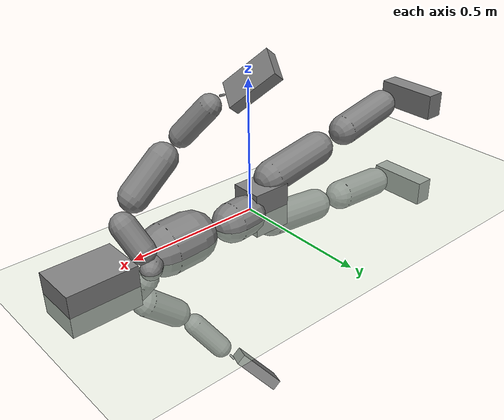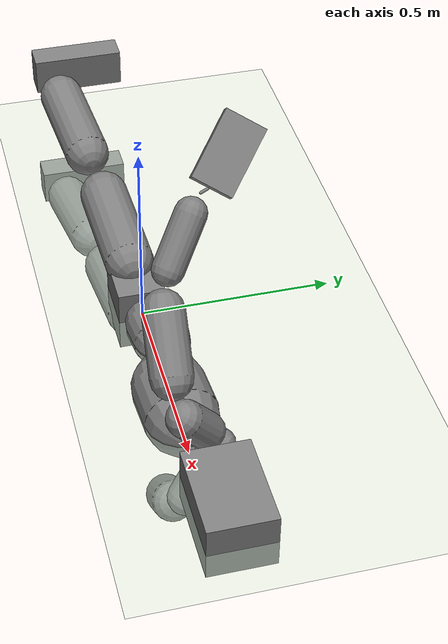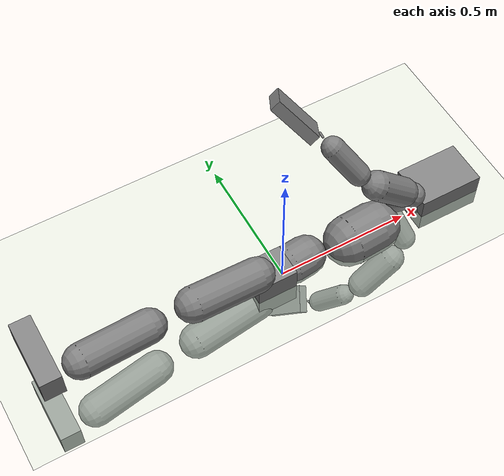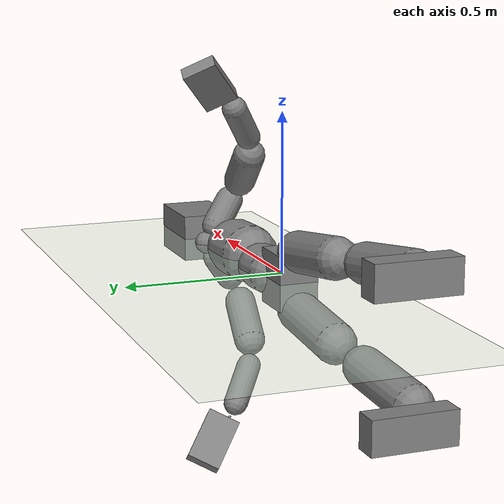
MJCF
<mujoco model="humanoid">
  <compiler coordinate="local"/>
  <statistic extent="2" center="0 0 1"/>
  <option timestep="0.00555"/>
  <default>
    <motor ctrlrange="-1 1" ctrllimited="true"/>
    <geom type="capsule" condim="1" friction="1.0 0.05 0.05" solimp=".9 .99 .003" solref=".015 1"/>
    <joint type="hinge" damping="0.1" stiffness="5" armature=".007" limited="true" solimplimit="0 .99 .01"/>
    <site size=".04" group="3"/>
    <default class="force-torque">
      <site type="box" size=".01 .01 .02" rgba="1 0 0 1"/>
    </default>
    <default class="touch">
      <site type="capsule" rgba="0 0 1 .3"/>
    </default>
  </default>
  <asset>
    <texture type="skybox" builtin="gradient" rgb1=".4 .5 .6" rgb2="0 0 0" width="100" height="100"/>
    <texture builtin="flat" height="1278" mark="cross" markrgb="1 1 1" name="texgeom" random="0.01" rgb1="0.8 0.6 0.4" rgb2="0.8 0.6 0.4" type="cube" width="127"/>
    <texture builtin="checker" height="100" name="texplane" rgb1="0 0 0" rgb2="0.8 0.8 0.8" type="2d" width="100"/>
    <material name="MatPlane" reflectance="0.5" shininess="1" specular="1" texrepeat="60 60" texture="texplane"/>
    <material name="geom" texture="texgeom" texuniform="true"/>
  </asset>
  <worldbody>
    <light cutoff="100" diffuse="1 1 1" dir="-0 0 -1.3" directional="true" exponent="1" pos="0 0 1.3" specular=".1 .1 .1"/>
    <geom conaffinity="1" condim="3" name="floor" pos="0 0 0" rgba="0.8 0.9 0.8 1" size="100 100 .2" type="plane" material="MatPlane"/>
    <body name="b_root" pos="0 0 0">
      <freejoint name="b_root"/>
      <geom density="4016.851368" type="box" pos="-0.0556 -0.0038 -0.0013" size="0.0746 0.0613 0.0858" quat="1.0000 0.0000 0.0000 0.0000"/>
      <body name="b_spine0" pos="0.0202 -0.0325 0">
        <joint name="b_spine0_x" type="hinge" pos="0 0 0" axis="1 0 0" stiffness="1000" damping="100" armature="0.02" range="-180.0000 180.0000"/>
        <joint name="b_spine0_y" type="hinge" pos="0 0 0" axis="0 1 0" stiffness="1000" damping="100" armature="0.02" range="-180.0000 180.0000"/>
        <joint name="b_spine0_z" type="hinge" pos="0 0 0" axis="0 0 1" stiffness="1000" damping="100" armature="0.02" range="-180.0000 180.0000"/>
        <geom type="capsule" contype="1" conaffinity="0" density="1777.777778" fromto="0.0221 0.0522 0.0000 0.0883 0.0588 0.0000" size="0.074"/>
        <body name="b_spine1" pos="0.1104 0.011 0">
          <joint name="b_spine1_x" type="hinge" pos="0 0 0" axis="1 0 0" stiffness="1000" damping="100" armature="0.02" range="-180.0000 180.0000"/>
          <joint name="b_spine1_y" type="hinge" pos="0 0 0" axis="0 1 0" stiffness="1000" damping="100" armature="0.02" range="-180.0000 180.0000"/>
          <joint name="b_spine1_z" type="hinge" pos="0 0 0" axis="0 0 1" stiffness="1000" damping="100" armature="0.02" range="-180.0000 180.0000"/>
          <geom type="capsule" contype="1" conaffinity="0" density="1777.777778" fromto="0.0219 0.0448 0.0000 0.0875 0.0292 0.0000" size="0.0035"/>
          <body name="b_spine2" pos="0.1094 -0.026 0">
            <joint name="b_spine2_x" type="hinge" pos="0 0 0" axis="1 0 0" stiffness="1000" damping="100" armature="0.02" range="-180.0000 180.0000"/>
            <joint name="b_spine2_y" type="hinge" pos="0 0 0" axis="0 1 0" stiffness="1000" damping="100" armature="0.02" range="-180.0000 180.0000"/>
            <joint name="b_spine2_z" type="hinge" pos="0 0 0" axis="0 0 1" stiffness="1000" damping="100" armature="0.02" range="-180.0000 180.0000"/>
            <geom type="capsule" contype="1" conaffinity="0" density="1777.777778" fromto="0.0369 0.0521 0.0000 0.1475 0.0583 0.0000" size="0.0942"/>
            <body name="b_spine3" pos="0.1843 0.0103 0">
              <joint name="b_spine3_x" type="hinge" pos="0 0 0" axis="1 0 0" stiffness="1000" damping="100" armature="0.02" range="-180.0000 180.0000"/>
              <joint name="b_spine3_y" type="hinge" pos="0 0 0" axis="0 1 0" stiffness="1000" damping="100" armature="0.02" range="-180.0000 180.0000"/>
              <joint name="b_spine3_z" type="hinge" pos="0 0 0" axis="0 0 1" stiffness="1000" damping="100" armature="0.02" range="-180.0000 180.0000"/>
              <geom type="capsule" contype="1" conaffinity="0" density="1777.777778" fromto="0.0157 0.0669 0.0000 0.0628 0.1176 0.0000" size="0.0369"/>
              <body name="b_neck0" pos="0.121 0.0522 0">
                <joint name="b_neck0_x" type="hinge" pos="0 0 0" axis="1 0 0" stiffness="500" damping="50" armature="0.02" range="-180.0000 180.0000"/>
                <joint name="b_neck0_y" type="hinge" pos="0 0 0" axis="0 1 0" stiffness="500" damping="50" armature="0.02" range="-180.0000 180.0000"/>
                <joint name="b_neck0_z" type="hinge" pos="0 0 0" axis="0 0 1" stiffness="500" damping="50" armature="0.02" range="-180.0000 180.0000"/>
                <geom type="capsule" contype="1" conaffinity="0" density="1000" fromto="0.0135 0.0041 0.0000 0.0542 0.0163 0.0000" size="0.03"/>
                <body name="b_head" pos="0.0677 0.0204 0">
                  <joint name="b_head_x" type="hinge" pos="0 0 0" axis="1 0 0" stiffness="500" damping="50" armature="0.02" range="-180.0000 180.0000"/>
                  <joint name="b_head_y" type="hinge" pos="0 0 0" axis="0 1 0" stiffness="500" damping="50" armature="0.02" range="-180.0000 180.0000"/>
                  <joint name="b_head_z" type="hinge" pos="0 0 0" axis="0 0 1" stiffness="500" damping="50" armature="0.02" range="-180.0000 180.0000"/>
                  <geom density="734.7532" type="box" pos="0.0689 0.0121 0.0000" size="0.122 0.0843 0.0755" quat="1.0000 0.0000 0.0000 0.0000"/>
                </body>
              </body>
              <body name="b_l_shoulder" pos="0.0572 0.1007 0.0282">
                <joint name="b_l_shoulder_x" type="hinge" pos="0 0 0" axis="1 0 0" stiffness="500" damping="50" armature="0.02" range="-180.0000 180.0000"/>
                <joint name="b_l_shoulder_y" type="hinge" pos="0 0 0" axis="0 1 0" stiffness="500" damping="50" armature="0.02" range="-180.0000 180.0000"/>
                <joint name="b_l_shoulder_z" type="hinge" pos="0 0 0" axis="0 0 1" stiffness="500" damping="50" armature="0.02" range="-180.0000 180.0000"/>
                <geom type="capsule" contype="1" conaffinity="0" density="1777.777778" fromto="0.0086 -0.0191 0.0265 0.0346 -0.0765 0.1058" size="0.0459"/>
                <body name="p_l_scap" pos="0.0432 -0.0956 0.1323">
                  <joint name="p_l_scap_x" type="hinge" pos="0 0 0" axis="1 0 0" stiffness="500" damping="50" armature="0.02" range="-180.0000 180.0000"/>
                  <joint name="p_l_scap_y" type="hinge" pos="0 0 0" axis="0 1 0" stiffness="500" damping="50" armature="0.02" range="-180.0000 180.0000"/>
                  <joint name="p_l_scap_z" type="hinge" pos="0 0 0" axis="0 0 1" stiffness="500" damping="50" armature="0.02" range="-180.0000 180.0000"/>
                  <geom type="sphere" contype="1" conaffinity="0" density="1000" size="0.0062" pos="0.0000 0.0000 0.0000"/>
                  <body name="b_l_arm" pos="-0.0293 -0.0001 0.0154">
                    <joint name="b_l_arm_x" type="hinge" pos="0 0 0" axis="1 0 0" stiffness="500" damping="50" armature="0.02" range="-180.0000 180.0000"/>
                    <joint name="b_l_arm_y" type="hinge" pos="0 0 0" axis="0 1 0" stiffness="500" damping="50" armature="0.02" range="-180.0000 180.0000"/>
                    <joint name="b_l_arm_z" type="hinge" pos="0 0 0" axis="0 0 1" stiffness="500" damping="50" armature="0.02" range="-180.0000 180.0000"/>
                    <geom type="capsule" contype="1" conaffinity="0" density="1000" fromto="-0.0380 0.0027 0.0344 -0.1521 0.0109 0.1376" size="0.0522"/>
                    <body name="b_l_forearm" pos="-0.1902 0.0136 0.172">
                      <joint name="b_l_forearm_x" type="hinge" pos="0 0 0" axis="1 0 0" stiffness="300" damping="30" armature="0.02" range="-180.0000 180.0000"/>
                      <joint name="b_l_forearm_y" type="hinge" pos="0 0 0" axis="0 1 0" stiffness="300" damping="30" armature="0.02" range="-180.0000 180.0000"/>
                      <joint name="b_l_forearm_z" type="hinge" pos="0 0 0" axis="0 0 1" stiffness="300" damping="30" armature="0.02" range="-180.0000 180.0000"/>
                      <geom type="capsule" contype="1" conaffinity="0" density="1000" fromto="-0.0213 0.0231 0.0342 -0.0853 0.0925 0.1367" size="0.0394"/>
                      <body name="b_l_wrist_twist" pos="-0.1067 0.1157 0.1708">
                        <joint name="b_l_wrist_twist_x" type="hinge" pos="0 0 0" axis="1 0 0" stiffness="200" damping="20" armature="0.02" range="-180.0000 180.0000"/>
                        <joint name="b_l_wrist_twist_y" type="hinge" pos="0 0 0" axis="0 1 0" stiffness="200" damping="20" armature="0.02" range="-180.0000 180.0000"/>
                        <joint name="b_l_wrist_twist_z" type="hinge" pos="0 0 0" axis="0 0 1" stiffness="200" damping="20" armature="0.02" range="-180.0000 180.0000"/>
                        <geom type="capsule" contype="1" conaffinity="0" density="1000" fromto="-0.0007 0.0054 0.0023 -0.0027 0.0216 0.0091" size="0.0037"/>
                        <body name="b_l_wrist" pos="-0.0033 0.027 0.0114">
                          <joint name="b_l_wrist_x" type="hinge" pos="0 0 0" axis="1 0 0" stiffness="200" damping="20" armature="0.02" range="-180.0000 180.0000"/>
                          <joint name="b_l_wrist_y" type="hinge" pos="0 0 0" axis="0 1 0" stiffness="200" damping="20" armature="0.02" range="-180.0000 180.0000"/>
                          <joint name="b_l_wrist_z" type="hinge" pos="0 0 0" axis="0 0 1" stiffness="200" damping="20" armature="0.02" range="-180.0000 180.0000"/>
                          <geom density="880.987223" type="box" pos="-0.0579 0.0582 0.0439" size="0.0885 0.0203 0.053" quat="0.4968 0.0840 -0.5319 0.6806"/>
                        </body>
                      </body>
                    </body>
                  </body>
                </body>
              </body>
              <body name="b_r_shoulder" pos="0.0572 0.1007 -0.0282">
                <joint name="b_r_shoulder_x" type="hinge" pos="0 0 0" axis="1 0 0" stiffness="500" damping="50" armature="0.02" range="-180.0000 180.0000"/>
                <joint name="b_r_shoulder_y" type="hinge" pos="0 0 0" axis="0 1 0" stiffness="500" damping="50" armature="0.02" range="-180.0000 180.0000"/>
                <joint name="b_r_shoulder_z" type="hinge" pos="0 0 0" axis="0 0 1" stiffness="500" damping="50" armature="0.02" range="-180.0000 180.0000"/>
                <geom type="capsule" contype="1" conaffinity="0" density="1777.777778" fromto="0.0086 -0.0191 -0.0265 0.0346 -0.0765 -0.1058" size="0.0442"/>
                <body name="p_r_scap" pos="0.0432 -0.0956 -0.1323">
                  <joint name="p_r_scap_x" type="hinge" pos="0 0 0" axis="1 0 0" stiffness="500" damping="50" armature="0.02" range="-180.0000 180.0000"/>
                  <joint name="p_r_scap_y" type="hinge" pos="0 0 0" axis="0 1 0" stiffness="500" damping="50" armature="0.02" range="-180.0000 180.0000"/>
                  <joint name="p_r_scap_z" type="hinge" pos="0 0 0" axis="0 0 1" stiffness="500" damping="50" armature="0.02" range="-180.0000 180.0000"/>
                  <geom type="sphere" contype="1" conaffinity="0" density="1000" size="0.0062" pos="0.0000 0.0000 0.0000"/>
                  <body name="b_r_arm" pos="-0.0293 -0.0001 -0.0154">
                    <joint name="b_r_arm_x" type="hinge" pos="0 0 0" axis="1 0 0" stiffness="500" damping="50" armature="0.02" range="-180.0000 180.0000"/>
                    <joint name="b_r_arm_y" type="hinge" pos="0 0 0" axis="0 1 0" stiffness="500" damping="50" armature="0.02" range="-180.0000 180.0000"/>
                    <joint name="b_r_arm_z" type="hinge" pos="0 0 0" axis="0 0 1" stiffness="500" damping="50" armature="0.02" range="-180.0000 180.0000"/>
                    <geom type="capsule" contype="1" conaffinity="0" density="1000" fromto="-0.0380 0.0027 -0.0344 -0.1521 0.0109 -0.1376" size="0.0512"/>
                    <body name="b_r_forearm" pos="-0.1902 0.0136 -0.172">
                      <joint name="b_r_forearm_x" type="hinge" pos="0 0 0" axis="1 0 0" stiffness="300" damping="30" armature="0.02" range="-180.0000 180.0000"/>
                      <joint name="b_r_forearm_y" type="hinge" pos="0 0 0" axis="0 1 0" stiffness="300" damping="30" armature="0.02" range="-180.0000 180.0000"/>
                      <joint name="b_r_forearm_z" type="hinge" pos="0 0 0" axis="0 0 1" stiffness="300" damping="30" armature="0.02" range="-180.0000 180.0000"/>
                      <geom type="capsule" contype="1" conaffinity="0" density="1000" fromto="-0.0213 0.0231 -0.0342 -0.0853 0.0925 -0.1367" size="0.0394"/>
                      <body name="b_r_wrist_twist" pos="-0.1067 0.1157 -0.1708">
                        <joint name="b_r_wrist_twist_x" type="hinge" pos="0 0 0" axis="1 0 0" stiffness="200" damping="20" armature="0.02" range="-180.0000 180.0000"/>
                        <joint name="b_r_wrist_twist_y" type="hinge" pos="0 0 0" axis="0 1 0" stiffness="200" damping="20" armature="0.02" range="-180.0000 180.0000"/>
                        <joint name="b_r_wrist_twist_z" type="hinge" pos="0 0 0" axis="0 0 1" stiffness="200" damping="20" armature="0.02" range="-180.0000 180.0000"/>
                        <geom type="capsule" contype="1" conaffinity="0" density="1000" fromto="-0.0007 0.0054 -0.0023 -0.0027 0.0216 -0.0091" size="0.0037"/>
                        <body name="b_r_wrist" pos="-0.0034 0.027 -0.0114">
                          <joint name="b_r_wrist_x" type="hinge" pos="0 0 0" axis="1 0 0" stiffness="200" damping="20" armature="0.02" range="-180.0000 180.0000"/>
                          <joint name="b_r_wrist_y" type="hinge" pos="0 0 0" axis="0 1 0" stiffness="200" damping="20" armature="0.02" range="-180.0000 180.0000"/>
                          <joint name="b_r_wrist_z" type="hinge" pos="0 0 0" axis="0 0 1" stiffness="200" damping="20" armature="0.02" range="-180.0000 180.0000"/>
                          <geom density="875.90525" type="box" pos="-0.0581 0.0575 -0.0415" size="0.0881 0.0202 0.0535" quat="0.6806 -0.5319 -0.0840 -0.4968"/>
                        </body>
                      </body>
                    </body>
                  </body>
                </body>
              </body>
            </body>
          </body>
        </body>
      </body>
      <body name="b_l_upleg" pos="-0.0255 -0.0053 0.0799">
        <joint name="b_l_upleg_x" type="hinge" pos="0 0 0" axis="1 0 0" stiffness="800" damping="80" armature="0.02" range="-180.0000 180.0000"/>
        <joint name="b_l_upleg_y" type="hinge" pos="0 0 0" axis="0 1 0" stiffness="800" damping="80" armature="0.02" range="-180.0000 180.0000"/>
        <joint name="b_l_upleg_z" type="hinge" pos="0 0 0" axis="0 0 1" stiffness="800" damping="80" armature="0.02" range="-180.0000 180.0000"/>
        <geom type="capsule" contype="1" conaffinity="0" density="1234.567901" fromto="-0.0830 -0.0048 0.0115 -0.3321 -0.0194 0.0459" size="0.0642"/>
        <body name="b_l_leg" pos="-0.4151 -0.0242 0.0573">
          <joint name="b_l_leg_x" type="hinge" pos="0 0 0" axis="1 0 0" stiffness="500" damping="50" armature="0.02" range="-180.0000 180.0000"/>
          <joint name="b_l_leg_y" type="hinge" pos="0 0 0" axis="0 1 0" stiffness="500" damping="50" armature="0.02" range="-180.0000 180.0000"/>
          <joint name="b_l_leg_z" type="hinge" pos="0 0 0" axis="0 0 1" stiffness="500" damping="50" armature="0.02" range="-180.0000 180.0000"/>
          <geom type="capsule" contype="1" conaffinity="0" density="1000" fromto="-0.0829 -0.0086 0.0110 -0.3318 -0.0344 0.0441" size="0.0602"/>
          <body name="b_l_foot_twist" pos="-0.4147 -0.043 0.0551">
            <joint name="b_l_foot_twist_x" type="hinge" pos="0 0 0" axis="1 0 0" stiffness="500" damping="50" armature="0.02" range="-180.0000 180.0000"/>
            <joint name="b_l_foot_twist_y" type="hinge" pos="0 0 0" axis="0 1 0" stiffness="500" damping="50" armature="0.02" range="-180.0000 180.0000"/>
            <joint name="b_l_foot_twist_z" type="hinge" pos="0 0 0" axis="0 0 1" stiffness="500" damping="50" armature="0.02" range="-180.0000 180.0000"/>
            <geom density="444.209352" type="box" pos="-0.0320 0.0745 0.0090" size="0.0376 0.1238 0.05" quat="1.0000 0.0000 0.0000 0.0000"/>
          </body>
        </body>
      </body>
      <body name="b_r_upleg" pos="-0.0255 -0.0053 -0.0799">
        <joint name="b_r_upleg_x" type="hinge" pos="0 0 0" axis="1 0 0" stiffness="800" damping="80" armature="0.02" range="-180.0000 180.0000"/>
        <joint name="b_r_upleg_y" type="hinge" pos="0 0 0" axis="0 1 0" stiffness="800" damping="80" armature="0.02" range="-180.0000 180.0000"/>
        <joint name="b_r_upleg_z" type="hinge" pos="0 0 0" axis="0 0 1" stiffness="800" damping="80" armature="0.02" range="-180.0000 180.0000"/>
        <geom type="capsule" contype="1" conaffinity="0" density="1234.567901" fromto="-0.0830 -0.0048 -0.0115 -0.3321 -0.0194 -0.0459" size="0.0633"/>
        <body name="b_r_leg" pos="-0.4151 -0.0242 -0.0573">
          <joint name="b_r_leg_x" type="hinge" pos="0 0 0" axis="1 0 0" stiffness="500" damping="50" armature="0.02" range="-180.0000 180.0000"/>
          <joint name="b_r_leg_y" type="hinge" pos="0 0 0" axis="0 1 0" stiffness="500" damping="50" armature="0.02" range="-180.0000 180.0000"/>
          <joint name="b_r_leg_z" type="hinge" pos="0 0 0" axis="0 0 1" stiffness="500" damping="50" armature="0.02" range="-180.0000 180.0000"/>
          <geom type="capsule" contype="1" conaffinity="0" density="1000" fromto="-0.0829 -0.0086 -0.0110 -0.3318 -0.0344 -0.0441" size="0.0601"/>
          <body name="b_r_foot_twist" pos="-0.4147 -0.043 -0.0551">
            <joint name="b_r_foot_twist_x" type="hinge" pos="0 0 0" axis="1 0 0" stiffness="500" damping="50" armature="0.02" range="-180.0000 180.0000"/>
            <joint name="b_r_foot_twist_y" type="hinge" pos="0 0 0" axis="0 1 0" stiffness="500" damping="50" armature="0.02" range="-180.0000 180.0000"/>
            <joint name="b_r_foot_twist_z" type="hinge" pos="0 0 0" axis="0 0 1" stiffness="500" damping="50" armature="0.02" range="-180.0000 180.0000"/>
            <geom density="442.197342" type="box" pos="-0.0324 0.0735 -0.0078" size="0.0374 0.1244 0.0501" quat="1.0000 0.0000 0.0000 0.0000"/>
          </body>
        </body>
      </body>
    </body>
  </worldbody>
  <actuator>
    <motor name="b_spine0_x" joint="b_spine0_x" gear="500"/>
    <motor name="b_spine0_y" joint="b_spine0_y" gear="500"/>
    <motor name="b_spine0_z" joint="b_spine0_z" gear="500"/>
    <motor name="b_spine1_x" joint="b_spine1_x" gear="500"/>
    <motor name="b_spine1_y" joint="b_spine1_y" gear="500"/>
    <motor name="b_spine1_z" joint="b_spine1_z" gear="500"/>
    <motor name="b_spine2_x" joint="b_spine2_x" gear="500"/>
    <motor name="b_spine2_y" joint="b_spine2_y" gear="500"/>
    <motor name="b_spine2_z" joint="b_spine2_z" gear="500"/>
    <motor name="b_spine3_x" joint="b_spine3_x" gear="500"/>
    <motor name="b_spine3_y" joint="b_spine3_y" gear="500"/>
    <motor name="b_spine3_z" joint="b_spine3_z" gear="500"/>
    <motor name="b_neck0_x" joint="b_neck0_x" gear="500"/>
    <motor name="b_neck0_y" joint="b_neck0_y" gear="500"/>
    <motor name="b_neck0_z" joint="b_neck0_z" gear="500"/>
    <motor name="b_head_x" joint="b_head_x" gear="500"/>
    <motor name="b_head_y" joint="b_head_y" gear="500"/>
    <motor name="b_head_z" joint="b_head_z" gear="500"/>
    <motor name="b_l_shoulder_x" joint="b_l_shoulder_x" gear="500"/>
    <motor name="b_l_shoulder_y" joint="b_l_shoulder_y" gear="500"/>
    <motor name="b_l_shoulder_z" joint="b_l_shoulder_z" gear="500"/>
    <motor name="p_l_scap_x" joint="p_l_scap_x" gear="500"/>
    <motor name="p_l_scap_y" joint="p_l_scap_y" gear="500"/>
    <motor name="p_l_scap_z" joint="p_l_scap_z" gear="500"/>
    <motor name="b_l_arm_x" joint="b_l_arm_x" gear="500"/>
    <motor name="b_l_arm_y" joint="b_l_arm_y" gear="500"/>
    <motor name="b_l_arm_z" joint="b_l_arm_z" gear="500"/>
    <motor name="b_l_forearm_x" joint="b_l_forearm_x" gear="500"/>
    <motor name="b_l_forearm_y" joint="b_l_forearm_y" gear="500"/>
    <motor name="b_l_forearm_z" joint="b_l_forearm_z" gear="500"/>
    <motor name="b_l_wrist_twist_x" joint="b_l_wrist_twist_x" gear="500"/>
    <motor name="b_l_wrist_twist_y" joint="b_l_wrist_twist_y" gear="500"/>
    <motor name="b_l_wrist_twist_z" joint="b_l_wrist_twist_z" gear="500"/>
    <motor name="b_l_wrist_x" joint="b_l_wrist_x" gear="500"/>
    <motor name="b_l_wrist_y" joint="b_l_wrist_y" gear="500"/>
    <motor name="b_l_wrist_z" joint="b_l_wrist_z" gear="500"/>
    <motor name="b_r_shoulder_x" joint="b_r_shoulder_x" gear="500"/>
    <motor name="b_r_shoulder_y" joint="b_r_shoulder_y" gear="500"/>
    <motor name="b_r_shoulder_z" joint="b_r_shoulder_z" gear="500"/>
    <motor name="p_r_scap_x" joint="p_r_scap_x" gear="500"/>
    <motor name="p_r_scap_y" joint="p_r_scap_y" gear="500"/>
    <motor name="p_r_scap_z" joint="p_r_scap_z" gear="500"/>
    <motor name="b_r_arm_x" joint="b_r_arm_x" gear="500"/>
    <motor name="b_r_arm_y" joint="b_r_arm_y" gear="500"/>
    <motor name="b_r_arm_z" joint="b_r_arm_z" gear="500"/>
    <motor name="b_r_forearm_x" joint="b_r_forearm_x" gear="500"/>
    <motor name="b_r_forearm_y" joint="b_r_forearm_y" gear="500"/>
    <motor name="b_r_forearm_z" joint="b_r_forearm_z" gear="500"/>
    <motor name="b_r_wrist_twist_x" joint="b_r_wrist_twist_x" gear="500"/>
    <motor name="b_r_wrist_twist_y" joint="b_r_wrist_twist_y" gear="500"/>
    <motor name="b_r_wrist_twist_z" joint="b_r_wrist_twist_z" gear="500"/>
    <motor name="b_r_wrist_x" joint="b_r_wrist_x" gear="500"/>
    <motor name="b_r_wrist_y" joint="b_r_wrist_y" gear="500"/>
    <motor name="b_r_wrist_z" joint="b_r_wrist_z" gear="500"/>
    <motor name="b_l_upleg_x" joint="b_l_upleg_x" gear="500"/>
    <motor name="b_l_upleg_y" joint="b_l_upleg_y" gear="500"/>
    <motor name="b_l_upleg_z" joint="b_l_upleg_z" gear="500"/>
    <motor name="b_l_leg_x" joint="b_l_leg_x" gear="500"/>
    <motor name="b_l_leg_y" joint="b_l_leg_y" gear="500"/>
    <motor name="b_l_leg_z" joint="b_l_leg_z" gear="500"/>
    <motor name="b_l_foot_twist_x" joint="b_l_foot_twist_x" gear="500"/>
    <motor name="b_l_foot_twist_y" joint="b_l_foot_twist_y" gear="500"/>
    <motor name="b_l_foot_twist_z" joint="b_l_foot_twist_z" gear="500"/>
    <motor name="b_r_upleg_x" joint="b_r_upleg_x" gear="500"/>
    <motor name="b_r_upleg_y" joint="b_r_upleg_y" gear="500"/>
    <motor name="b_r_upleg_z" joint="b_r_upleg_z" gear="500"/>
    <motor name="b_r_leg_x" joint="b_r_leg_x" gear="500"/>
    <motor name="b_r_leg_y" joint="b_r_leg_y" gear="500"/>
    <motor name="b_r_leg_z" joint="b_r_leg_z" gear="500"/>
    <motor name="b_r_foot_twist_x" joint="b_r_foot_twist_x" gear="500"/>
    <motor name="b_r_foot_twist_y" joint="b_r_foot_twist_y" gear="500"/>
    <motor name="b_r_foot_twist_z" joint="b_r_foot_twist_z" gear="500"/>
  </actuator>
  <contact/>
  <size njmax="5000" nconmax="5000"/>
</mujoco>
